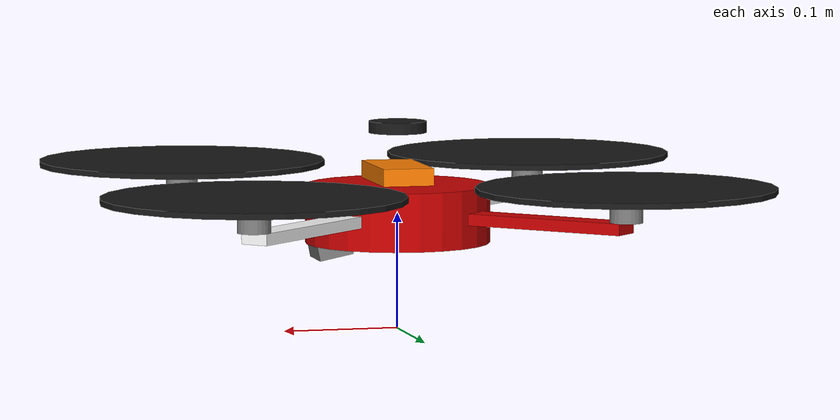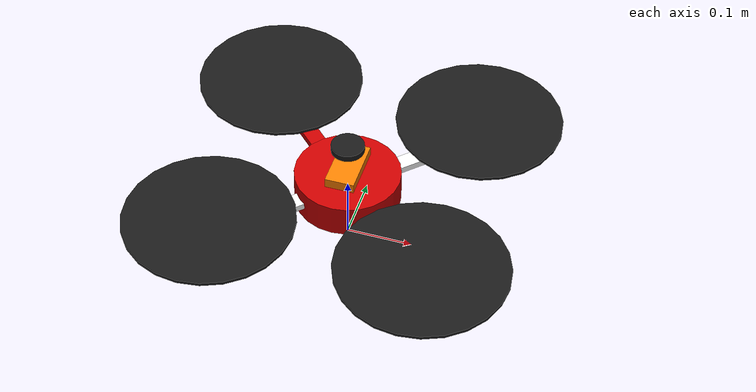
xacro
<?xml version="1.0"?>
<robot xmlns:xacro="http://www.ros.org/wiki/xacro" name="f450_drone">

    <!-- DJI F450 Quadcopter  -->

    <!-- Properties -->
    <xacro:property name="frame_mass" value="0.280"/>
    <xacro:property name="motor_mass" value="0.055"/>
    <xacro:property name="propeller_mass" value="0.010"/>
    <xacro:property name="battery_mass" value="0.350"/>
    <xacro:property name="electronics_mass" value="0.200"/>

    <!-- Frame dimensions (meters) -->
    <xacro:property name="arm_length" value="0.225"/>
    <xacro:property name="arm_width" value="0.025"/>
    <xacro:property name="arm_height" value="0.010"/>
    <xacro:property name="center_radius" value="0.080"/>
    <xacro:property name="center_height" value="0.050"/>

    <!-- Motor dimensions -->
    <xacro:property name="motor_radius" value="0.014"/>
    <xacro:property name="motor_height" value="0.025"/>

    <!-- Propeller dimensions (10x4.5 inch = 254mm x 114mm) -->
    <xacro:property name="propeller_radius" value="0.127"/>
    <xacro:property name="propeller_height" value="0.005"/>

    <!-- Colors -->
    <material name="red">
        <color rgba="0.8 0.0 0.0 1.0"/>
    </material>
    <material name="white">
        <color rgba="1.0 1.0 1.0 1.0"/>
    </material>
    <material name="black">
        <color rgba="0.1 0.1 0.1 1.0"/>
    </material>
    <material name="grey">
        <color rgba="0.5 0.5 0.5 1.0"/>
    </material>
    <material name="orange">
        <color rgba="1.0 0.5 0.0 1.0"/>
    </material>

    <!-- Inertia macros -->
    <xacro:macro name="cylinder_inertia" params="m r h">
        <inertial>
            <mass value="${m}"/>
            <inertia ixx="${m*(3*r*r+h*h)/12}" ixy="0" ixz="0"
                     iyy="${m*(3*r*r+h*h)/12}" iyz="0"
                     izz="${m*r*r/2}"/>
        </inertial>
    </xacro:macro>

    <xacro:macro name="box_inertia" params="m x y z">
        <inertial>
            <mass value="${m}"/>
            <inertia ixx="${m*(y*y+z*z)/12}" ixy="0" ixz="0"
                     iyy="${m*(x*x+z*z)/12}" iyz="0"
                     izz="${m*(x*x+y*y)/12}"/>
        </inertial>
    </xacro:macro>

    <!-- Base Link (Center)   -->
    <link name="base_link">
        <visual>
            <origin xyz="0 0 0" rpy="0 0 0"/>
            <geometry>
                <cylinder radius="${center_radius}" length="${center_height}"/>
            </geometry>
            <material name="red"/>
        </visual>
        <collision>
            <origin xyz="0 0 0" rpy="0 0 0"/>
            <geometry>
                <cylinder radius="${center_radius}" length="${center_height}"/>
            </geometry>
        </collision>
        <xacro:cylinder_inertia m="${frame_mass + battery_mass + electronics_mass}" r="${center_radius}" h="${center_height}"/>
    </link>

    <!-- Base footprint for navigation -->
    <link name="base_footprint"/>
    <joint name="base_footprint_joint" type="fixed">
        <parent link="base_footprint"/>
        <child link="base_link"/>
        <origin xyz="0 0 0.1" rpy="0 0 0"/>
    </joint>

    <!-- Arm Macro            -->
    <xacro:macro name="arm" params="name angle color">
        <link name="${name}_arm">
            <visual>
                <origin xyz="${arm_length/2} 0 0" rpy="0 0 0"/>
                <geometry>
                    <box size="${arm_length} ${arm_width} ${arm_height}"/>
                </geometry>
                <material name="${color}"/>
            </visual>
            <collision>
                <origin xyz="${arm_length/2} 0 0" rpy="0 0 0"/>
                <geometry>
                    <box size="${arm_length} ${arm_width} ${arm_height}"/>
                </geometry>
            </collision>
            <xacro:box_inertia m="0.030" x="${arm_length}" y="${arm_width}" z="${arm_height}"/>
        </link>

        <joint name="${name}_arm_joint" type="fixed">
            <parent link="base_link"/>
            <child link="${name}_arm"/>
            <origin xyz="0 0 0" rpy="0 0 ${angle}"/>
        </joint>
    </xacro:macro>

    <!-- Motor Macro          -->
    <xacro:macro name="motor" params="name parent_arm angle">
        <link name="${name}_motor">
            <visual>
                <origin xyz="0 0 ${motor_height/2}" rpy="0 0 0"/>
                <geometry>
                    <cylinder radius="${motor_radius}" length="${motor_height}"/>
                </geometry>
                <material name="grey"/>
            </visual>
            <collision>
                <origin xyz="0 0 ${motor_height/2}" rpy="0 0 0"/>
                <geometry>
                    <cylinder radius="${motor_radius}" length="${motor_height}"/>
                </geometry>
            </collision>
            <xacro:cylinder_inertia m="${motor_mass}" r="${motor_radius}" h="${motor_height}"/>
        </link>

        <joint name="${name}_motor_joint" type="fixed">
            <parent link="${parent_arm}_arm"/>
            <child link="${name}_motor"/>
            <origin xyz="${arm_length} 0 ${arm_height/2}" rpy="0 0 0"/>
        </joint>
    </xacro:macro>

    <!-- Propeller Macro      -->
    <xacro:macro name="propeller" params="name parent_motor direction">
        <link name="${name}_propeller">
            <visual>
                <origin xyz="0 0 0" rpy="0 0 0"/>
                <geometry>
                    <cylinder radius="${propeller_radius}" length="${propeller_height}"/>
                </geometry>
                <material name="black"/>
            </visual>
            <collision>
                <origin xyz="0 0 0" rpy="0 0 0"/>
                <geometry>
                    <cylinder radius="${propeller_radius}" length="${propeller_height}"/>
                </geometry>
            </collision>
            <xacro:cylinder_inertia m="${propeller_mass}" r="${propeller_radius}" h="${propeller_height}"/>
        </link>

        <joint name="${name}_propeller_joint" type="continuous">
            <parent link="${parent_motor}_motor"/>
            <child link="${name}_propeller"/>
            <origin xyz="0 0 ${motor_height + propeller_height/2}" rpy="0 0 0"/>
            <axis xyz="0 0 ${direction}"/>
            <limit effort="10" velocity="1000"/>
        </joint>
    </xacro:macro>

    <!-- Create Arms          -->
    <!-- X-configuration: arms at 45, 135, 225, 315 degrees -->
    <!-- Front-Right (1), Front-Left (2), Rear-Left (3), Rear-Right (4) -->

    <xacro:arm name="arm1" angle="${radians(45)}" color="white"/>
    <xacro:arm name="arm2" angle="${radians(135)}" color="red"/>
    <xacro:arm name="arm3" angle="${radians(225)}" color="white"/>
    <xacro:arm name="arm4" angle="${radians(315)}" color="red"/>

    <!-- Create Motors        -->
    <xacro:motor name="motor1" parent_arm="arm1" angle="${radians(45)}"/>
    <xacro:motor name="motor2" parent_arm="arm2" angle="${radians(135)}"/>
    <xacro:motor name="motor3" parent_arm="arm3" angle="${radians(225)}"/>
    <xacro:motor name="motor4" parent_arm="arm4" angle="${radians(315)}"/>

    <!-- Create Propellers    -->
    <!-- Alternating CW/CCW: 1-CW, 2-CCW, 3-CW, 4-CCW -->
    <xacro:propeller name="prop1" parent_motor="motor1" direction="1"/>
    <xacro:propeller name="prop2" parent_motor="motor2" direction="-1"/>
    <xacro:propeller name="prop3" parent_motor="motor3" direction="1"/>
    <xacro:propeller name="prop4" parent_motor="motor4" direction="-1"/>

    <!-- Camera Mount         -->
    <link name="camera_mount">
        <visual>
            <origin xyz="0 0 0" rpy="0 0 0"/>
            <geometry>
                <box size="0.03 0.04 0.02"/>
            </geometry>
            <material name="grey"/>
        </visual>
        <collision>
            <origin xyz="0 0 0" rpy="0 0 0"/>
            <geometry>
                <box size="0.03 0.04 0.02"/>
            </geometry>
        </collision>
        <xacro:box_inertia m="0.020" x="0.03" y="0.04" z="0.02"/>
    </link>

    <joint name="camera_mount_joint" type="fixed">
        <parent link="base_link"/>
        <child link="camera_mount"/>
        <origin xyz="${center_radius - 0.02} 0 -${center_height/2}" rpy="0 0.2 0"/>
    </joint>

    <!-- Camera optical frame -->
    <link name="camera_link"/>
    <joint name="camera_joint" type="fixed">
        <parent link="camera_mount"/>
        <child link="camera_link"/>
        <origin xyz="0.015 0 0" rpy="-1.5708 0 -1.5708"/>
    </joint>

    <link name="camera_optical_frame"/>
    <joint name="camera_optical_joint" type="fixed">
        <parent link="camera_link"/>
        <child link="camera_optical_frame"/>
        <origin xyz="0 0 0" rpy="0 0 0"/>
    </joint>

    <!-- GPS Mount            -->
    <link name="gps_link">
        <visual>
            <origin xyz="0 0 0" rpy="0 0 0"/>
            <geometry>
                <cylinder radius="0.025" length="0.010"/>
            </geometry>
            <material name="black"/>
        </visual>
        <collision>
            <origin xyz="0 0 0" rpy="0 0 0"/>
            <geometry>
                <cylinder radius="0.025" length="0.010"/>
            </geometry>
        </collision>
        <xacro:cylinder_inertia m="0.030" r="0.025" h="0.010"/>
    </link>

    <joint name="gps_joint" type="fixed">
        <parent link="base_link"/>
        <child link="gps_link"/>
        <origin xyz="0 0 ${center_height/2 + 0.05}" rpy="0 0 0"/>
    </joint>

    <!-- Flight Controller    -->
    <link name="flight_controller_link">
        <visual>
            <origin xyz="0 0 0" rpy="0 0 0"/>
            <geometry>
                <box size="0.044 0.084 0.015"/>
            </geometry>
            <material name="orange"/>
        </visual>
        <collision>
            <origin xyz="0 0 0" rpy="0 0 0"/>
            <geometry>
                <box size="0.044 0.084 0.015"/>
            </geometry>
        </collision>
        <xacro:box_inertia m="0.040" x="0.044" y="0.084" z="0.015"/>
    </link>

    <joint name="flight_controller_joint" type="fixed">
        <parent link="base_link"/>
        <child link="flight_controller_link"/>
        <origin xyz="0 0 ${center_height/2 + 0.01}" rpy="0 0 0"/>
    </joint>

    <!-- IMU Link             -->
    <link name="imu_link"/>
    <joint name="imu_joint" type="fixed">
        <parent link="flight_controller_link"/>
        <child link="imu_link"/>
        <origin xyz="0 0 0" rpy="0 0 0"/>
    </joint>

</robot>
